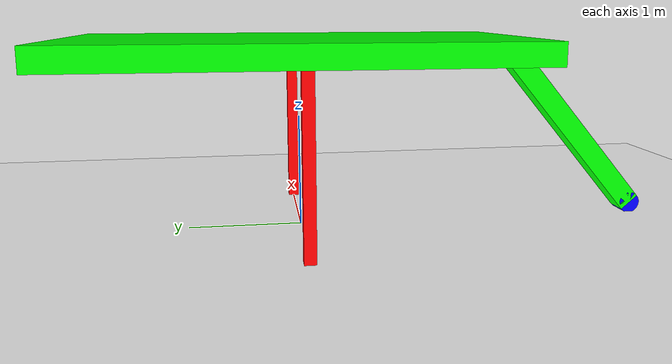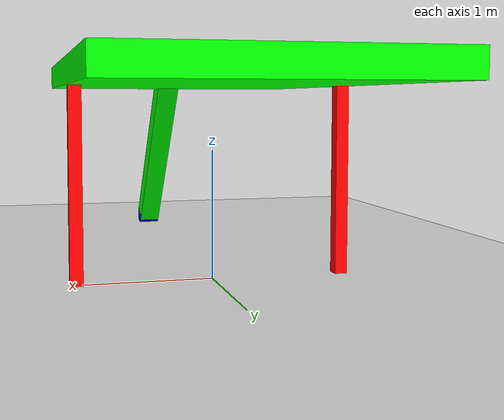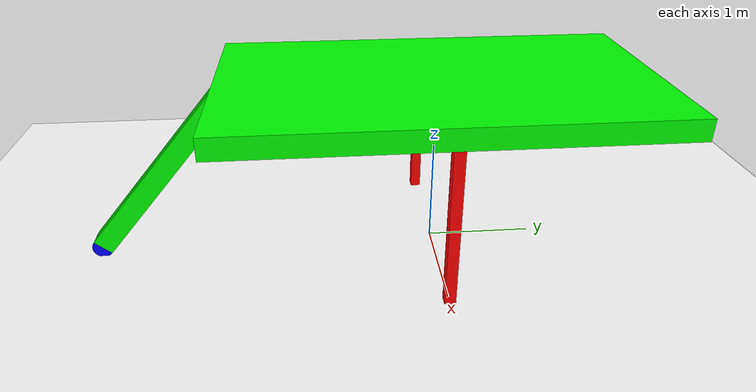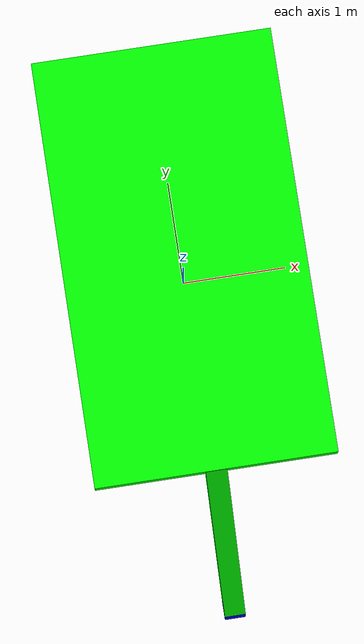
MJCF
<mujoco>
  <option timestep="0.001" />
  <option integrator="RK4" />
  <option gravity="0 0 -9.81" />
  <worldbody>
    <light diffuse=".5 .5 .5" pos="0 0 10" dir="0 0 -1"/>
    <geom type="plane" size="5 5 0.1" rgba="1 1 1 1"/>

    <body pos="0 0 1.6">
        <joint type="free"/>
        <geom type="box" size="1.125 2 0.1" rgba="0 1 0 1" mass="10" />
        <body pos="1.05 0 -0.85">
            <joint type="hinge"/>
            <geom type="box" size="0.05 0.05 0.75" rgba="1 0 0 1" mass="1" />
        </body>
        <body pos="-1.05 0 -0.85">
            <joint type="hinge"/>
            <geom type="box" size="0.05 0.05 0.75" rgba="1 0 0 1" mass="1" />
        </body>
        <body name="tail" pos="0 -2.55 -0.75" euler="-40 0 0">
            <joint name="tail_motor" type="hinge" axis="1 0 0" pos="0 0 1" damping="5.0" armature="0.1" range="-150 0" />
            <geom type="box" size="0.1 0.1 1" rgba="0 1 0 1" mass="13" />
            <body name="wheel" pos="0 0 -1" euler="0 90 0" >
                <joint type="hinge" />
                <geom type="cylinder" size="0.1 0.1" rgba="0 0 1 1" mass="1" />
            </body>
        </body>
    </body>
  </worldbody>

    <actuator>
        <motor joint="tail_motor" name="torque" gear="1" ctrllimited="true" ctrlrange="-50 50" />
    </actuator>

</mujoco>
